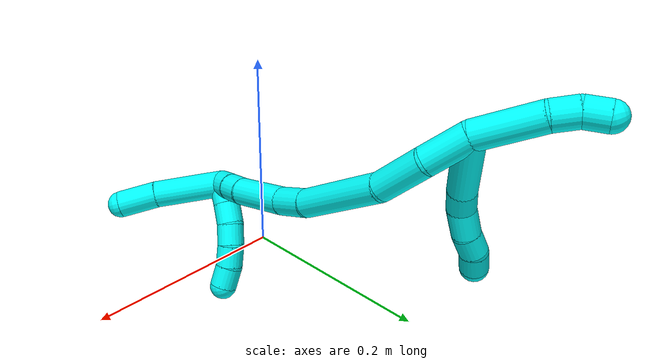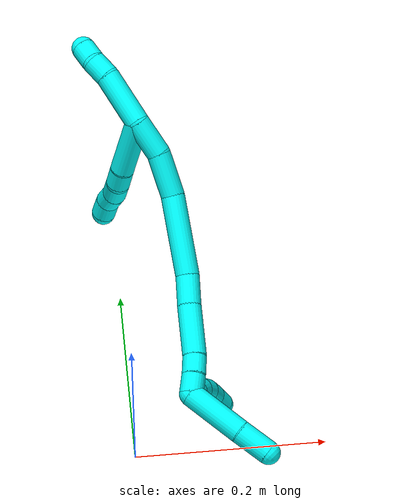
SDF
<sdf version="1.7">
 <world name="default">
  <model name="3">
   <static>0</static>
   <link name="3">
    <collision name="collision-cylinder-e_1_2_8">
     <pose>-0.029031 -0.010065 -0.008784 2.28836 -1.13953 -1.90744</pose>
     <geometry><cylinder><radius>0.0125</radius><length>0.063915</length></cylinder></geometry>
     <surface>
      <friction><ode><mu>1.16</mu><mu2>1.16</mu2><slip1>0</slip1><slip2>0</slip2></ode></friction>
      <contact><ode><kp>1e+06</kp><kd>1</kd><max_vel>0</max_vel><min_depth>0.001</min_depth></ode></contact>
     </surface>
    </collision>
    <visual name="visual-cylinder-e_1_2_8">
     <pose>-0.029031 -0.010065 -0.008784 2.28836 -1.13953 -1.90744</pose>
     <geometry><cylinder><radius>0.0125</radius><length>0.063915</length></cylinder></geometry>
     <material><ambient>0.003922 1 0.996078 1</ambient></material>
    </visual>
    <collision name="collision-cylinder-e_2_8_9">
     <pose>-0.068151 -0.022164 -0.020079 2.46054 -1.26077 -2.23751</pose>
     <geometry><cylinder><radius>0.0125</radius><length>0.021186</length></cylinder></geometry>
     <surface>
      <friction><ode><mu>1.16</mu><mu2>1.16</mu2><slip1>0</slip1><slip2>0</slip2></ode></friction>
      <contact><ode><kp>1e+06</kp><kd>1</kd><max_vel>0</max_vel><min_depth>0.001</min_depth></ode></contact>
     </surface>
    </collision>
    <visual name="visual-cylinder-e_2_8_9">
     <pose>-0.068151 -0.022164 -0.020079 2.46054 -1.26077 -2.23751</pose>
     <geometry><cylinder><radius>0.0125</radius><length>0.021186</length></cylinder></geometry>
     <material><ambient>0.003922 1 0.996078 1</ambient></material>
    </visual>
    <collision name="collision-cylinder-e_3_9_10">
     <pose>-0.090484 -0.023217 -0.023619 -2.37923 -1.45513 2.29581</pose>
     <geometry><cylinder><radius>0.0125</radius><length>0.024654</length></cylinder></geometry>
     <surface>
      <friction><ode><mu>1.16</mu><mu2>1.16</mu2><slip1>0</slip1><slip2>0</slip2></ode></friction>
      <contact><ode><kp>1e+06</kp><kd>1</kd><max_vel>0</max_vel><min_depth>0.001</min_depth></ode></contact>
     </surface>
    </collision>
    <visual name="visual-cylinder-e_3_9_10">
     <pose>-0.090484 -0.023217 -0.023619 -2.37923 -1.45513 2.29581</pose>
     <geometry><cylinder><radius>0.0125</radius><length>0.024654</length></cylinder></geometry>
     <material><ambient>0.003922 1 0.996078 1</ambient></material>
    </visual>
    <collision name="collision-cylinder-e_4_10_11">
     <pose>-0.112755 -0.022484 -0.023844 0.301047 -1.48705 -0.277158</pose>
     <geometry><cylinder><radius>0.0125</radius><length>0.020124</length></cylinder></geometry>
     <surface>
      <friction><ode><mu>1.16</mu><mu2>1.16</mu2><slip1>0</slip1><slip2>0</slip2></ode></friction>
      <contact><ode><kp>1e+06</kp><kd>1</kd><max_vel>0</max_vel><min_depth>0.001</min_depth></ode></contact>
     </surface>
    </collision>
    <visual name="visual-cylinder-e_4_10_11">
     <pose>-0.112755 -0.022484 -0.023844 0.301047 -1.48705 -0.277158</pose>
     <geometry><cylinder><radius>0.0125</radius><length>0.020124</length></cylinder></geometry>
     <material><ambient>0.003922 1 0.996078 1</ambient></material>
    </visual>
    <collision name="collision-cylinder-e_5_11_6">
     <pose>-0.132496 -0.024571 -0.024904 2.36332 -1.30754 -2.1588</pose>
     <geometry><cylinder><radius>0.0125</radius><length>0.020121</length></cylinder></geometry>
     <surface>
      <friction><ode><mu>1.16</mu><mu2>1.16</mu2><slip1>0</slip1><slip2>0</slip2></ode></friction>
      <contact><ode><kp>1e+06</kp><kd>1</kd><max_vel>0</max_vel><min_depth>0.001</min_depth></ode></contact>
     </surface>
    </collision>
    <visual name="visual-cylinder-e_5_11_6">
     <pose>-0.132496 -0.024571 -0.024904 2.36332 -1.30754 -2.1588</pose>
     <geometry><cylinder><radius>0.0125</radius><length>0.020121</length></cylinder></geometry>
     <material><ambient>0.003922 1 0.996078 1</ambient></material>
    </visual>
    <collision name="collision-cylinder-e_1_2_12">
     <pose>0.002837 0.005809 0.027977 -0.204729 0.098964 -0.010174</pose>
     <geometry><cylinder><radius>0.0125</radius><length>0.057429</length></cylinder></geometry>
     <surface>
      <friction><ode><mu>1.16</mu><mu2>1.16</mu2><slip1>0</slip1><slip2>0</slip2></ode></friction>
      <contact><ode><kp>1e+06</kp><kd>1</kd><max_vel>0</max_vel><min_depth>0.001</min_depth></ode></contact>
     </surface>
    </collision>
    <visual name="visual-cylinder-e_1_2_12">
     <pose>0.002837 0.005809 0.027977 -0.204729 0.098964 -0.010174</pose>
     <geometry><cylinder><radius>0.0125</radius><length>0.057429</length></cylinder></geometry>
     <material><ambient>0.003922 1 0.996078 1</ambient></material>
    </visual>
    <collision name="collision-cylinder-e_2_12_13">
     <pose>0.00453 0.012778 0.06688 -0.105754 -0.103793 0.005498</pose>
     <geometry><cylinder><radius>0.0125</radius><length>0.022091</length></cylinder></geometry>
     <surface>
      <friction><ode><mu>1.16</mu><mu2>1.16</mu2><slip1>0</slip1><slip2>0</slip2></ode></friction>
      <contact><ode><kp>1e+06</kp><kd>1</kd><max_vel>0</max_vel><min_depth>0.001</min_depth></ode></contact>
     </surface>
    </collision>
    <visual name="visual-cylinder-e_2_12_13">
     <pose>0.00453 0.012778 0.06688 -0.105754 -0.103793 0.005498</pose>
     <geometry><cylinder><radius>0.0125</radius><length>0.022091</length></cylinder></geometry>
     <material><ambient>0.003922 1 0.996078 1</ambient></material>
    </visual>
    <collision name="collision-cylinder-e_3_13_5">
     <pose>0.000307 0.017286 0.086979 -0.349902 -0.305352 0.054383</pose>
     <geometry><cylinder><radius>0.0125</radius><length>0.020479</length></cylinder></geometry>
     <surface>
      <friction><ode><mu>1.16</mu><mu2>1.16</mu2><slip1>0</slip1><slip2>0</slip2></ode></friction>
      <contact><ode><kp>1e+06</kp><kd>1</kd><max_vel>0</max_vel><min_depth>0.001</min_depth></ode></contact>
     </surface>
    </collision>
    <visual name="visual-cylinder-e_3_13_5">
     <pose>0.000307 0.017286 0.086979 -0.349902 -0.305352 0.054383</pose>
     <geometry><cylinder><radius>0.0125</radius><length>0.020479</length></cylinder></geometry>
     <material><ambient>0.003922 1 0.996078 1</ambient></material>
    </visual>
    <collision name="collision-cylinder-e_1_2_14">
     <pose>-0.006121 -0.001094 -0.018643 3.08297 -0.316721 -2.77844</pose>
     <geometry><cylinder><radius>0.0125</radius><length>0.039306</length></cylinder></geometry>
     <surface>
      <friction><ode><mu>1.16</mu><mu2>1.16</mu2><slip1>0</slip1><slip2>0</slip2></ode></friction>
      <contact><ode><kp>1e+06</kp><kd>1</kd><max_vel>0</max_vel><min_depth>0.001</min_depth></ode></contact>
     </surface>
    </collision>
    <visual name="visual-cylinder-e_1_2_14">
     <pose>-0.006121 -0.001094 -0.018643 3.08297 -0.316721 -2.77844</pose>
     <geometry><cylinder><radius>0.0125</radius><length>0.039306</length></cylinder></geometry>
     <material><ambient>0.003922 1 0.996078 1</ambient></material>
    </visual>
    <collision name="collision-cylinder-e_2_14_15">
     <pose>-0.02231 -0.008602 -0.057188 2.82985 -0.448767 -1.93559</pose>
     <geometry><cylinder><radius>0.0125</radius><length>0.046414</length></cylinder></geometry>
     <surface>
      <friction><ode><mu>1.16</mu><mu2>1.16</mu2><slip1>0</slip1><slip2>0</slip2></ode></friction>
      <contact><ode><kp>1e+06</kp><kd>1</kd><max_vel>0</max_vel><min_depth>0.001</min_depth></ode></contact>
     </surface>
    </collision>
    <visual name="visual-cylinder-e_2_14_15">
     <pose>-0.02231 -0.008602 -0.057188 2.82985 -0.448767 -1.93559</pose>
     <geometry><cylinder><radius>0.0125</radius><length>0.046414</length></cylinder></geometry>
     <material><ambient>0.003922 1 0.996078 1</ambient></material>
    </visual>
    <collision name="collision-cylinder-e_3_15_16">
     <pose>-0.044583 -0.03645 -0.111729 2.58746 -0.291086 -0.951838</pose>
     <geometry><cylinder><radius>0.0125</radius><length>0.085049</length></cylinder></geometry>
     <surface>
      <friction><ode><mu>1.16</mu><mu2>1.16</mu2><slip1>0</slip1><slip2>0</slip2></ode></friction>
      <contact><ode><kp>1e+06</kp><kd>1</kd><max_vel>0</max_vel><min_depth>0.001</min_depth></ode></contact>
     </surface>
    </collision>
    <visual name="visual-cylinder-e_3_15_16">
     <pose>-0.044583 -0.03645 -0.111729 2.58746 -0.291086 -0.951838</pose>
     <geometry><cylinder><radius>0.0125</radius><length>0.085049</length></cylinder></geometry>
     <material><ambient>0.003922 1 0.996078 1</ambient></material>
    </visual>
    <collision name="collision-cylinder-e_4_16_17">
     <pose>-0.059535 -0.068633 -0.15837 2.41125 -0.168932 -0.43588</pose>
     <geometry><cylinder><radius>0.0125</radius><length>0.032687</length></cylinder></geometry>
     <surface>
      <friction><ode><mu>1.16</mu><mu2>1.16</mu2><slip1>0</slip1><slip2>0</slip2></ode></friction>
      <contact><ode><kp>1e+06</kp><kd>1</kd><max_vel>0</max_vel><min_depth>0.001</min_depth></ode></contact>
     </surface>
    </collision>
    <visual name="visual-cylinder-e_4_16_17">
     <pose>-0.059535 -0.068633 -0.15837 2.41125 -0.168932 -0.43588</pose>
     <geometry><cylinder><radius>0.0125</radius><length>0.032687</length></cylinder></geometry>
     <material><ambient>0.003922 1 0.996078 1</ambient></material>
    </visual>
    <collision name="collision-cylinder-e_5_17_18">
     <pose>-0.063197 -0.097832 -0.191009 2.41207 -0.033021 -0.086431</pose>
     <geometry><cylinder><radius>0.0125</radius><length>0.055396</length></cylinder></geometry>
     <surface>
      <friction><ode><mu>1.16</mu><mu2>1.16</mu2><slip1>0</slip1><slip2>0</slip2></ode></friction>
      <contact><ode><kp>1e+06</kp><kd>1</kd><max_vel>0</max_vel><min_depth>0.001</min_depth></ode></contact>
     </surface>
    </collision>
    <visual name="visual-cylinder-e_5_17_18">
     <pose>-0.063197 -0.097832 -0.191009 2.41207 -0.033021 -0.086431</pose>
     <geometry><cylinder><radius>0.0125</radius><length>0.055396</length></cylinder></geometry>
     <material><ambient>0.003922 1 0.996078 1</ambient></material>
    </visual>
    <collision name="collision-cylinder-e_6_18_19">
     <pose>-0.064843 -0.123971 -0.218167 2.27418 -0.072449 -0.156188</pose>
     <geometry><cylinder><radius>0.0125</radius><length>0.020216</length></cylinder></geometry>
     <surface>
      <friction><ode><mu>1.16</mu><mu2>1.16</mu2><slip1>0</slip1><slip2>0</slip2></ode></friction>
      <contact><ode><kp>1e+06</kp><kd>1</kd><max_vel>0</max_vel><min_depth>0.001</min_depth></ode></contact>
     </surface>
    </collision>
    <visual name="visual-cylinder-e_6_18_19">
     <pose>-0.064843 -0.123971 -0.218167 2.27418 -0.072449 -0.156188</pose>
     <geometry><cylinder><radius>0.0125</radius><length>0.020216</length></cylinder></geometry>
     <material><ambient>0.003922 1 0.996078 1</ambient></material>
    </visual>
    <collision name="collision-cylinder-e_7_19_1">
     <pose>-0.067191 -0.139938 -0.230886 2.21348 -0.155054 -0.307954</pose>
     <geometry><cylinder><radius>0.0125</radius><length>0.020933</length></cylinder></geometry>
     <surface>
      <friction><ode><mu>1.16</mu><mu2>1.16</mu2><slip1>0</slip1><slip2>0</slip2></ode></friction>
      <contact><ode><kp>1e+06</kp><kd>1</kd><max_vel>0</max_vel><min_depth>0.001</min_depth></ode></contact>
     </surface>
    </collision>
    <visual name="visual-cylinder-e_7_19_1">
     <pose>-0.067191 -0.139938 -0.230886 2.21348 -0.155054 -0.307954</pose>
     <geometry><cylinder><radius>0.0125</radius><length>0.020933</length></cylinder></geometry>
     <material><ambient>0.003922 1 0.996078 1</ambient></material>
    </visual>
    <collision name="collision-cylinder-e_1_1_20">
     <pose>-0.063753 -0.146682 -0.268717 -3.09314 0.158278 -2.5485</pose>
     <geometry><cylinder><radius>0.0125</radius><length>0.064143</length></cylinder></geometry>
     <surface>
      <friction><ode><mu>1.16</mu><mu2>1.16</mu2><slip1>0</slip1><slip2>0</slip2></ode></friction>
      <contact><ode><kp>1e+06</kp><kd>1</kd><max_vel>0</max_vel><min_depth>0.001</min_depth></ode></contact>
     </surface>
    </collision>
    <visual name="visual-cylinder-e_1_1_20">
     <pose>-0.063753 -0.146682 -0.268717 -3.09314 0.158278 -2.5485</pose>
     <geometry><cylinder><radius>0.0125</radius><length>0.064143</length></cylinder></geometry>
     <material><ambient>0.003922 1 0.996078 1</ambient></material>
    </visual>
    <collision name="collision-cylinder-e_2_20_4">
     <pose>-0.057413 -0.143096 -0.318115 -3.02662 0.071733 -1.11501</pose>
     <geometry><cylinder><radius>0.0125</radius><length>0.035857</length></cylinder></geometry>
     <surface>
      <friction><ode><mu>1.16</mu><mu2>1.16</mu2><slip1>0</slip1><slip2>0</slip2></ode></friction>
      <contact><ode><kp>1e+06</kp><kd>1</kd><max_vel>0</max_vel><min_depth>0.001</min_depth></ode></contact>
     </surface>
    </collision>
    <visual name="visual-cylinder-e_2_20_4">
     <pose>-0.057413 -0.143096 -0.318115 -3.02662 0.071733 -1.11501</pose>
     <geometry><cylinder><radius>0.0125</radius><length>0.035857</length></cylinder></geometry>
     <material><ambient>0.003922 1 0.996078 1</ambient></material>
    </visual>
    <collision name="collision-cylinder-e_1_1_21">
     <pose>-0.076119 -0.141393 -0.237079 -1.57008 -0.819933 0.81941</pose>
     <geometry><cylinder><radius>0.0125</radius><length>0.02</length></cylinder></geometry>
     <surface>
      <friction><ode><mu>1.16</mu><mu2>1.16</mu2><slip1>0</slip1><slip2>0</slip2></ode></friction>
      <contact><ode><kp>1e+06</kp><kd>1</kd><max_vel>0</max_vel><min_depth>0.001</min_depth></ode></contact>
     </surface>
    </collision>
    <visual name="visual-cylinder-e_1_1_21">
     <pose>-0.076119 -0.141393 -0.237079 -1.57008 -0.819933 0.81941</pose>
     <geometry><cylinder><radius>0.0125</radius><length>0.02</length></cylinder></geometry>
     <material><ambient>0.003922 1 0.996078 1</ambient></material>
    </visual>
    <collision name="collision-cylinder-e_2_21_22">
     <pose>-0.090758 -0.127781 -0.237526 -1.63728 -0.822414 0.872269</pose>
     <geometry><cylinder><radius>0.0125</radius><length>0.02</length></cylinder></geometry>
     <surface>
      <friction><ode><mu>1.16</mu><mu2>1.16</mu2><slip1>0</slip1><slip2>0</slip2></ode></friction>
      <contact><ode><kp>1e+06</kp><kd>1</kd><max_vel>0</max_vel><min_depth>0.001</min_depth></ode></contact>
     </surface>
    </collision>
    <visual name="visual-cylinder-e_2_21_22">
     <pose>-0.090758 -0.127781 -0.237526 -1.63728 -0.822414 0.872269</pose>
     <geometry><cylinder><radius>0.0125</radius><length>0.02</length></cylinder></geometry>
     <material><ambient>0.003922 1 0.996078 1</ambient></material>
    </visual>
    <collision name="collision-cylinder-e_3_22_23">
     <pose>-0.105773 -0.114999 -0.240212 -1.9276 -0.876925 1.18779</pose>
     <geometry><cylinder><radius>0.0125</radius><length>0.02</length></cylinder></geometry>
     <surface>
      <friction><ode><mu>1.16</mu><mu2>1.16</mu2><slip1>0</slip1><slip2>0</slip2></ode></friction>
      <contact><ode><kp>1e+06</kp><kd>1</kd><max_vel>0</max_vel><min_depth>0.001</min_depth></ode></contact>
     </surface>
    </collision>
    <visual name="visual-cylinder-e_3_22_23">
     <pose>-0.105773 -0.114999 -0.240212 -1.9276 -0.876925 1.18779</pose>
     <geometry><cylinder><radius>0.0125</radius><length>0.02</length></cylinder></geometry>
     <material><ambient>0.003922 1 0.996078 1</ambient></material>
    </visual>
    <collision name="collision-cylinder-e_4_23_24">
     <pose>-0.121534 -0.104362 -0.246086 -2.23554 -0.939526 1.61278</pose>
     <geometry><cylinder><radius>0.0125</radius><length>0.02</length></cylinder></geometry>
     <surface>
      <friction><ode><mu>1.16</mu><mu2>1.16</mu2><slip1>0</slip1><slip2>0</slip2></ode></friction>
      <contact><ode><kp>1e+06</kp><kd>1</kd><max_vel>0</max_vel><min_depth>0.001</min_depth></ode></contact>
     </surface>
    </collision>
    <visual name="visual-cylinder-e_4_23_24">
     <pose>-0.121534 -0.104362 -0.246086 -2.23554 -0.939526 1.61278</pose>
     <geometry><cylinder><radius>0.0125</radius><length>0.02</length></cylinder></geometry>
     <material><ambient>0.003922 1 0.996078 1</ambient></material>
    </visual>
    <collision name="collision-cylinder-e_5_24_3">
     <pose>-0.136981 -0.095868 -0.255278 -2.53541 -0.829172 1.906</pose>
     <geometry><cylinder><radius>0.0125</radius><length>0.02</length></cylinder></geometry>
     <surface>
      <friction><ode><mu>1.16</mu><mu2>1.16</mu2><slip1>0</slip1><slip2>0</slip2></ode></friction>
      <contact><ode><kp>1e+06</kp><kd>1</kd><max_vel>0</max_vel><min_depth>0.001</min_depth></ode></contact>
     </surface>
    </collision>
    <visual name="visual-cylinder-e_5_24_3">
     <pose>-0.136981 -0.095868 -0.255278 -2.53541 -0.829172 1.906</pose>
     <geometry><cylinder><radius>0.0125</radius><length>0.02</length></cylinder></geometry>
     <material><ambient>0.003922 1 0.996078 1</ambient></material>
    </visual>
    <collision name="collision-sphere-3">
     <pose>-0.144354 -0.09202 -0.260829 0 -0 0</pose>
     <geometry><sphere><radius>0.0125</radius></sphere></geometry>
     <surface>
      <friction><ode><mu>1.16</mu><mu2>1.16</mu2><slip1>0</slip1><slip2>0</slip2></ode></friction>
      <contact><ode><kp>1e+06</kp><kd>1</kd><max_vel>0</max_vel><min_depth>0.001</min_depth></ode></contact>
     </surface>
    </collision>
    <visual name="visual-sphere-3">
     <pose>-0.144354 -0.09202 -0.260829 0 -0 0</pose>
     <geometry><sphere><radius>0.0125</radius></sphere></geometry>
     <material><ambient>0.003922 1 0.996078 1</ambient></material>
    </visual>
    <collision name="collision-sphere-24">
     <pose>-0.129607 -0.099716 -0.249726 0 -0 0</pose>
     <geometry><sphere><radius>0.0125</radius></sphere></geometry>
     <surface>
      <friction><ode><mu>1.16</mu><mu2>1.16</mu2><slip1>0</slip1><slip2>0</slip2></ode></friction>
      <contact><ode><kp>1e+06</kp><kd>1</kd><max_vel>0</max_vel><min_depth>0.001</min_depth></ode></contact>
     </surface>
    </collision>
    <visual name="visual-sphere-24">
     <pose>-0.129607 -0.099716 -0.249726 0 -0 0</pose>
     <geometry><sphere><radius>0.0125</radius></sphere></geometry>
     <material><ambient>0.003922 1 0.996078 1</ambient></material>
    </visual>
    <collision name="collision-sphere-23">
     <pose>-0.113461 -0.109007 -0.242445 0 -0 0</pose>
     <geometry><sphere><radius>0.0125</radius></sphere></geometry>
     <surface>
      <friction><ode><mu>1.16</mu><mu2>1.16</mu2><slip1>0</slip1><slip2>0</slip2></ode></friction>
      <contact><ode><kp>1e+06</kp><kd>1</kd><max_vel>0</max_vel><min_depth>0.001</min_depth></ode></contact>
     </surface>
    </collision>
    <visual name="visual-sphere-23">
     <pose>-0.113461 -0.109007 -0.242445 0 -0 0</pose>
     <geometry><sphere><radius>0.0125</radius></sphere></geometry>
     <material><ambient>0.003922 1 0.996078 1</ambient></material>
    </visual>
    <collision name="collision-sphere-22">
     <pose>-0.098086 -0.120991 -0.237978 0 -0 0</pose>
     <geometry><sphere><radius>0.0125</radius></sphere></geometry>
     <surface>
      <friction><ode><mu>1.16</mu><mu2>1.16</mu2><slip1>0</slip1><slip2>0</slip2></ode></friction>
      <contact><ode><kp>1e+06</kp><kd>1</kd><max_vel>0</max_vel><min_depth>0.001</min_depth></ode></contact>
     </surface>
    </collision>
    <visual name="visual-sphere-22">
     <pose>-0.098086 -0.120991 -0.237978 0 -0 0</pose>
     <geometry><sphere><radius>0.0125</radius></sphere></geometry>
     <material><ambient>0.003922 1 0.996078 1</ambient></material>
    </visual>
    <collision name="collision-sphere-21">
     <pose>-0.08343 -0.13457 -0.237074 0 -0 0</pose>
     <geometry><sphere><radius>0.0125</radius></sphere></geometry>
     <surface>
      <friction><ode><mu>1.16</mu><mu2>1.16</mu2><slip1>0</slip1><slip2>0</slip2></ode></friction>
      <contact><ode><kp>1e+06</kp><kd>1</kd><max_vel>0</max_vel><min_depth>0.001</min_depth></ode></contact>
     </surface>
    </collision>
    <visual name="visual-sphere-21">
     <pose>-0.08343 -0.13457 -0.237074 0 -0 0</pose>
     <geometry><sphere><radius>0.0125</radius></sphere></geometry>
     <material><ambient>0.003922 1 0.996078 1</ambient></material>
    </visual>
    <collision name="collision-sphere-4">
     <pose>-0.056128 -0.141045 -0.335879 0 -0 0</pose>
     <geometry><sphere><radius>0.0125</radius></sphere></geometry>
     <surface>
      <friction><ode><mu>1.16</mu><mu2>1.16</mu2><slip1>0</slip1><slip2>0</slip2></ode></friction>
      <contact><ode><kp>1e+06</kp><kd>1</kd><max_vel>0</max_vel><min_depth>0.001</min_depth></ode></contact>
     </surface>
    </collision>
    <visual name="visual-sphere-4">
     <pose>-0.056128 -0.141045 -0.335879 0 -0 0</pose>
     <geometry><sphere><radius>0.0125</radius></sphere></geometry>
     <material><ambient>0.003922 1 0.996078 1</ambient></material>
    </visual>
    <collision name="collision-sphere-20">
     <pose>-0.058698 -0.145148 -0.30035 0 -0 0</pose>
     <geometry><sphere><radius>0.0125</radius></sphere></geometry>
     <surface>
      <friction><ode><mu>1.16</mu><mu2>1.16</mu2><slip1>0</slip1><slip2>0</slip2></ode></friction>
      <contact><ode><kp>1e+06</kp><kd>1</kd><max_vel>0</max_vel><min_depth>0.001</min_depth></ode></contact>
     </surface>
    </collision>
    <visual name="visual-sphere-20">
     <pose>-0.058698 -0.145148 -0.30035 0 -0 0</pose>
     <geometry><sphere><radius>0.0125</radius></sphere></geometry>
     <material><ambient>0.003922 1 0.996078 1</ambient></material>
    </visual>
    <collision name="collision-sphere-6">
     <pose>-0.142209 -0.026409 -0.026769 0 -0 0</pose>
     <geometry><sphere><radius>0.0125</radius></sphere></geometry>
     <surface>
      <friction><ode><mu>1.16</mu><mu2>1.16</mu2><slip1>0</slip1><slip2>0</slip2></ode></friction>
      <contact><ode><kp>1e+06</kp><kd>1</kd><max_vel>0</max_vel><min_depth>0.001</min_depth></ode></contact>
     </surface>
    </collision>
    <visual name="visual-sphere-6">
     <pose>-0.142209 -0.026409 -0.026769 0 -0 0</pose>
     <geometry><sphere><radius>0.0125</radius></sphere></geometry>
     <material><ambient>0.003922 1 0.996078 1</ambient></material>
    </visual>
    <collision name="collision-sphere-11">
     <pose>-0.122782 -0.022733 -0.02304 0 -0 0</pose>
     <geometry><sphere><radius>0.0125</radius></sphere></geometry>
     <surface>
      <friction><ode><mu>1.16</mu><mu2>1.16</mu2><slip1>0</slip1><slip2>0</slip2></ode></friction>
      <contact><ode><kp>1e+06</kp><kd>1</kd><max_vel>0</max_vel><min_depth>0.001</min_depth></ode></contact>
     </surface>
    </collision>
    <visual name="visual-sphere-11">
     <pose>-0.122782 -0.022733 -0.02304 0 -0 0</pose>
     <geometry><sphere><radius>0.0125</radius></sphere></geometry>
     <material><ambient>0.003922 1 0.996078 1</ambient></material>
    </visual>
    <collision name="collision-sphere-10">
     <pose>-0.102729 -0.022234 -0.024648 0 -0 0</pose>
     <geometry><sphere><radius>0.0125</radius></sphere></geometry>
     <surface>
      <friction><ode><mu>1.16</mu><mu2>1.16</mu2><slip1>0</slip1><slip2>0</slip2></ode></friction>
      <contact><ode><kp>1e+06</kp><kd>1</kd><max_vel>0</max_vel><min_depth>0.001</min_depth></ode></contact>
     </surface>
    </collision>
    <visual name="visual-sphere-10">
     <pose>-0.102729 -0.022234 -0.024648 0 -0 0</pose>
     <geometry><sphere><radius>0.0125</radius></sphere></geometry>
     <material><ambient>0.003922 1 0.996078 1</ambient></material>
    </visual>
    <collision name="collision-sphere-9">
     <pose>-0.078239 -0.024199 -0.02259 0 -0 0</pose>
     <geometry><sphere><radius>0.0125</radius></sphere></geometry>
     <surface>
      <friction><ode><mu>1.16</mu><mu2>1.16</mu2><slip1>0</slip1><slip2>0</slip2></ode></friction>
      <contact><ode><kp>1e+06</kp><kd>1</kd><max_vel>0</max_vel><min_depth>0.001</min_depth></ode></contact>
     </surface>
    </collision>
    <visual name="visual-sphere-9">
     <pose>-0.078239 -0.024199 -0.02259 0 -0 0</pose>
     <geometry><sphere><radius>0.0125</radius></sphere></geometry>
     <material><ambient>0.003922 1 0.996078 1</ambient></material>
    </visual>
    <collision name="collision-sphere-2">
     <geometry><sphere><radius>0.0125</radius></sphere></geometry>
     <surface>
      <friction><ode><mu>1.16</mu><mu2>1.16</mu2><slip1>0</slip1><slip2>0</slip2></ode></friction>
      <contact><ode><kp>1e+06</kp><kd>1</kd><max_vel>0</max_vel><min_depth>0.001</min_depth></ode></contact>
     </surface>
    </collision>
    <visual name="visual-sphere-2">
     <geometry><sphere><radius>0.0125</radius></sphere></geometry>
     <material><ambient>0.003922 1 0.996078 1</ambient></material>
    </visual>
    <collision name="collision-sphere-19">
     <pose>-0.065575 -0.13166 -0.224688 0 -0 0</pose>
     <geometry><sphere><radius>0.0125</radius></sphere></geometry>
     <surface>
      <friction><ode><mu>1.16</mu><mu2>1.16</mu2><slip1>0</slip1><slip2>0</slip2></ode></friction>
      <contact><ode><kp>1e+06</kp><kd>1</kd><max_vel>0</max_vel><min_depth>0.001</min_depth></ode></contact>
     </surface>
    </collision>
    <visual name="visual-sphere-19">
     <pose>-0.065575 -0.13166 -0.224688 0 -0 0</pose>
     <geometry><sphere><radius>0.0125</radius></sphere></geometry>
     <material><ambient>0.003922 1 0.996078 1</ambient></material>
    </visual>
    <collision name="collision-sphere-8">
     <pose>-0.058063 -0.02013 -0.017568 0 -0 0</pose>
     <geometry><sphere><radius>0.0125</radius></sphere></geometry>
     <surface>
      <friction><ode><mu>1.16</mu><mu2>1.16</mu2><slip1>0</slip1><slip2>0</slip2></ode></friction>
      <contact><ode><kp>1e+06</kp><kd>1</kd><max_vel>0</max_vel><min_depth>0.001</min_depth></ode></contact>
     </surface>
    </collision>
    <visual name="visual-sphere-8">
     <pose>-0.058063 -0.02013 -0.017568 0 -0 0</pose>
     <geometry><sphere><radius>0.0125</radius></sphere></geometry>
     <material><ambient>0.003922 1 0.996078 1</ambient></material>
    </visual>
    <collision name="collision-sphere-12">
     <pose>0.005674 0.011618 0.055955 0 -0 0</pose>
     <geometry><sphere><radius>0.0125</radius></sphere></geometry>
     <surface>
      <friction><ode><mu>1.16</mu><mu2>1.16</mu2><slip1>0</slip1><slip2>0</slip2></ode></friction>
      <contact><ode><kp>1e+06</kp><kd>1</kd><max_vel>0</max_vel><min_depth>0.001</min_depth></ode></contact>
     </surface>
    </collision>
    <visual name="visual-sphere-12">
     <pose>0.005674 0.011618 0.055955 0 -0 0</pose>
     <geometry><sphere><radius>0.0125</radius></sphere></geometry>
     <material><ambient>0.003922 1 0.996078 1</ambient></material>
    </visual>
    <collision name="collision-sphere-13">
     <pose>0.003385 0.013938 0.077805 0 -0 0</pose>
     <geometry><sphere><radius>0.0125</radius></sphere></geometry>
     <surface>
      <friction><ode><mu>1.16</mu><mu2>1.16</mu2><slip1>0</slip1><slip2>0</slip2></ode></friction>
      <contact><ode><kp>1e+06</kp><kd>1</kd><max_vel>0</max_vel><min_depth>0.001</min_depth></ode></contact>
     </surface>
    </collision>
    <visual name="visual-sphere-13">
     <pose>0.003385 0.013938 0.077805 0 -0 0</pose>
     <geometry><sphere><radius>0.0125</radius></sphere></geometry>
     <material><ambient>0.003922 1 0.996078 1</ambient></material>
    </visual>
    <collision name="collision-sphere-5">
     <pose>-0.002771 0.020633 0.096153 0 -0 0</pose>
     <geometry><sphere><radius>0.0125</radius></sphere></geometry>
     <surface>
      <friction><ode><mu>1.16</mu><mu2>1.16</mu2><slip1>0</slip1><slip2>0</slip2></ode></friction>
      <contact><ode><kp>1e+06</kp><kd>1</kd><max_vel>0</max_vel><min_depth>0.001</min_depth></ode></contact>
     </surface>
    </collision>
    <visual name="visual-sphere-5">
     <pose>-0.002771 0.020633 0.096153 0 -0 0</pose>
     <geometry><sphere><radius>0.0125</radius></sphere></geometry>
     <material><ambient>0.003922 1 0.996078 1</ambient></material>
    </visual>
    <collision name="collision-sphere-14">
     <pose>-0.012242 -0.002188 -0.037287 0 -0 0</pose>
     <geometry><sphere><radius>0.0125</radius></sphere></geometry>
     <surface>
      <friction><ode><mu>1.16</mu><mu2>1.16</mu2><slip1>0</slip1><slip2>0</slip2></ode></friction>
      <contact><ode><kp>1e+06</kp><kd>1</kd><max_vel>0</max_vel><min_depth>0.001</min_depth></ode></contact>
     </surface>
    </collision>
    <visual name="visual-sphere-14">
     <pose>-0.012242 -0.002188 -0.037287 0 -0 0</pose>
     <geometry><sphere><radius>0.0125</radius></sphere></geometry>
     <material><ambient>0.003922 1 0.996078 1</ambient></material>
    </visual>
    <collision name="collision-sphere-15">
     <pose>-0.032379 -0.015015 -0.077089 0 -0 0</pose>
     <geometry><sphere><radius>0.0125</radius></sphere></geometry>
     <surface>
      <friction><ode><mu>1.16</mu><mu2>1.16</mu2><slip1>0</slip1><slip2>0</slip2></ode></friction>
      <contact><ode><kp>1e+06</kp><kd>1</kd><max_vel>0</max_vel><min_depth>0.001</min_depth></ode></contact>
     </surface>
    </collision>
    <visual name="visual-sphere-15">
     <pose>-0.032379 -0.015015 -0.077089 0 -0 0</pose>
     <geometry><sphere><radius>0.0125</radius></sphere></geometry>
     <material><ambient>0.003922 1 0.996078 1</ambient></material>
    </visual>
    <collision name="collision-sphere-16">
     <pose>-0.056787 -0.057885 -0.146369 0 -0 0</pose>
     <geometry><sphere><radius>0.0125</radius></sphere></geometry>
     <surface>
      <friction><ode><mu>1.16</mu><mu2>1.16</mu2><slip1>0</slip1><slip2>0</slip2></ode></friction>
      <contact><ode><kp>1e+06</kp><kd>1</kd><max_vel>0</max_vel><min_depth>0.001</min_depth></ode></contact>
     </surface>
    </collision>
    <visual name="visual-sphere-16">
     <pose>-0.056787 -0.057885 -0.146369 0 -0 0</pose>
     <geometry><sphere><radius>0.0125</radius></sphere></geometry>
     <material><ambient>0.003922 1 0.996078 1</ambient></material>
    </visual>
    <collision name="collision-sphere-17">
     <pose>-0.062283 -0.079381 -0.170372 0 -0 0</pose>
     <geometry><sphere><radius>0.0125</radius></sphere></geometry>
     <surface>
      <friction><ode><mu>1.16</mu><mu2>1.16</mu2><slip1>0</slip1><slip2>0</slip2></ode></friction>
      <contact><ode><kp>1e+06</kp><kd>1</kd><max_vel>0</max_vel><min_depth>0.001</min_depth></ode></contact>
     </surface>
    </collision>
    <visual name="visual-sphere-17">
     <pose>-0.062283 -0.079381 -0.170372 0 -0 0</pose>
     <geometry><sphere><radius>0.0125</radius></sphere></geometry>
     <material><ambient>0.003922 1 0.996078 1</ambient></material>
    </visual>
    <collision name="collision-sphere-18">
     <pose>-0.064112 -0.116283 -0.211647 0 -0 0</pose>
     <geometry><sphere><radius>0.0125</radius></sphere></geometry>
     <surface>
      <friction><ode><mu>1.16</mu><mu2>1.16</mu2><slip1>0</slip1><slip2>0</slip2></ode></friction>
      <contact><ode><kp>1e+06</kp><kd>1</kd><max_vel>0</max_vel><min_depth>0.001</min_depth></ode></contact>
     </surface>
    </collision>
    <visual name="visual-sphere-18">
     <pose>-0.064112 -0.116283 -0.211647 0 -0 0</pose>
     <geometry><sphere><radius>0.0125</radius></sphere></geometry>
     <material><ambient>0.003922 1 0.996078 1</ambient></material>
    </visual>
    <collision name="collision-sphere-1">
     <pose>-0.068808 -0.148216 -0.237084 0 -0 0</pose>
     <geometry><sphere><radius>0.0125</radius></sphere></geometry>
     <surface>
      <friction><ode><mu>1.16</mu><mu2>1.16</mu2><slip1>0</slip1><slip2>0</slip2></ode></friction>
      <contact><ode><kp>1e+06</kp><kd>1</kd><max_vel>0</max_vel><min_depth>0.001</min_depth></ode></contact>
     </surface>
    </collision>
    <visual name="visual-sphere-1">
     <pose>-0.068808 -0.148216 -0.237084 0 -0 0</pose>
     <geometry><sphere><radius>0.0125</radius></sphere></geometry>
     <material><ambient>0.003922 1 0.996078 1</ambient></material>
    </visual>
    <inertial>
     <pose>-0.053599 -0.059374 -0.118056 0 -0 0</pose>
     <mass>0.75</mass>
     <inertia>
      <ixx>-5.8e-05</ixx>
      <ixy>0</ixy>
      <ixz>0</ixz>
      <iyy>-4.4e-05</iyy>
      <iyz>0</iyz>
      <izz>7.4e-05</izz>
     </inertia>
    </inertial>
   </link>
   <pose>0.028379 0.267542 0.224602 -0.216252 -1.23858 -0.579529</pose>
  </model>
 </world>
</sdf>
